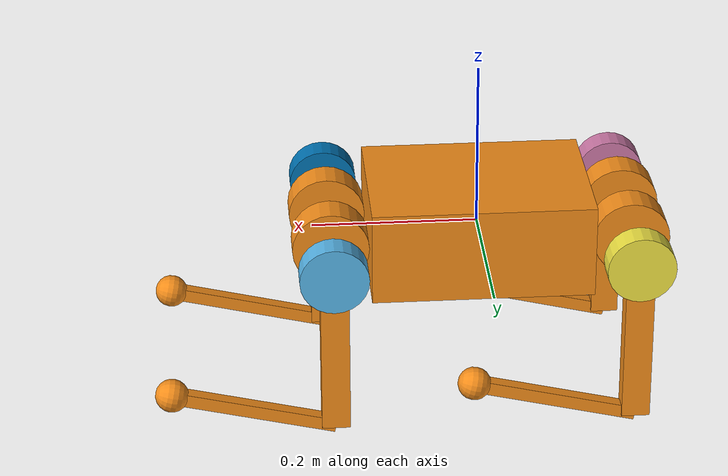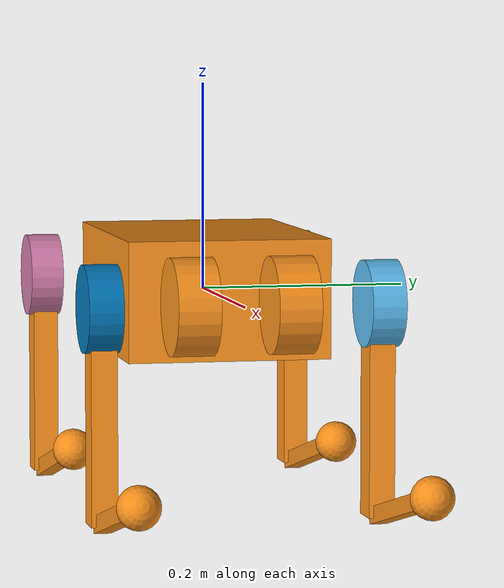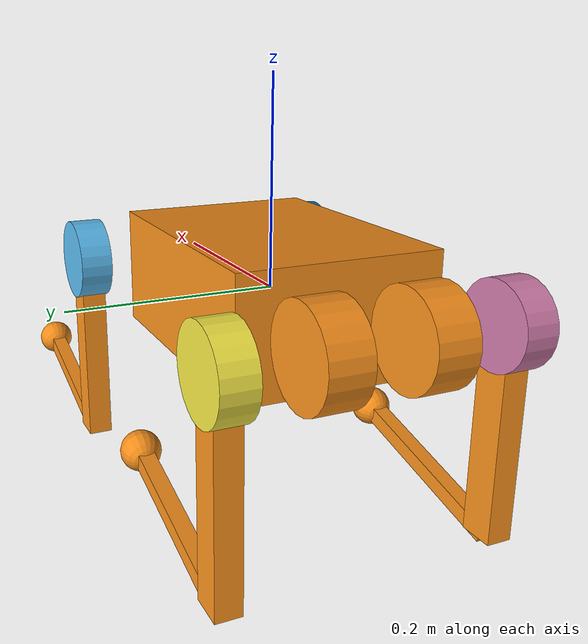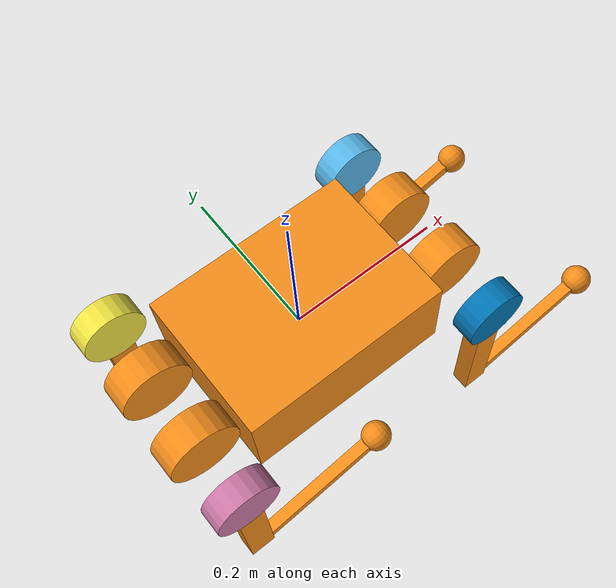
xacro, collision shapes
<?xml version="1.0"?>

<robot name="a1" xmlns:xacro="http://www.ros.org/wiki/xacro">

     <!-- This argument allows us to load joint sensors that measure the internal wrenches -->
    <xacro:arg name="load_force_sensors" default="false"/>
    <xacro:arg name="sensors" default="false"/>
    <xacro:arg name="task_period" default="0.004"/>
    <xacro:arg name="arm_enabled" default="false"/>
    <xacro:arg name="arm_name" default="kinova"/>
    <xacro:arg name="floating_base_link" default="true"/>
    <xacro:arg name="robot_name"  default="a1"/>
    <xacro:arg name="base_name"   default="trunk"/>

    <!-- load generic materials -->
    <xacro:include filename="$(find wolf_description_utils)/urdfs/materials.xacro"/>

    <!-- generic simulator_gazebo plugins for starting mechanism control, ros time -->
    <xacro:include filename="$(find wolf_description_utils)/urdfs/gazebo.urdf.xacro"/>

    <!-- legs transmission and gazebo plugins -->
    <xacro:include filename="$(find wolf_description_utils)/urdfs/leg.transmission.xacro"/>
    <xacro:include filename="$(find wolf_description_utils)/urdfs/leg.gazebo.xacro"/>

    <!-- sensors -->
    <xacro:if value="$(arg sensors)">
        <xacro:include filename="$(find sensors_description)/urdfs/sensors/imu.gazebo.xacro"/>
    </xacro:if>

    <xacro:include filename="$(find a1_description)/urdfs/const.xacro"/>
    <xacro:include filename="$(find a1_description)/urdfs/leg.xacro"/>

    <!-- Rollover Protection mode will add an additional stick on the top, use "true" or "false" to switch it. -->
    <xacro:property name="rolloverProtection" value="false"/>

    <!-- Floating-base Joint -->
    <xacro:if value="$(arg floating_base_link)">
            <link name="world"/>
            <joint name="floating_base_joint" type="floating">
              <origin rpy="0 0 0" xyz="0 0 0"/>
              <parent link="world"/>
              <child link="trunk"/>
            </joint>
    </xacro:if>

    <link name="trunk">
        <visual>
            <origin rpy="0 0 0" xyz="0 0 0"/>
            <geometry>
                <mesh filename="package://a1_description/meshes/trunk.dae" scale="1 1 1"/>
            </geometry>
            <material name="orange"/>
        </visual>
        <collision>
            <origin rpy="0 0 0" xyz="0 0 0"/>
            <geometry>
                <box size="${trunk_length} ${trunk_width} ${trunk_height}"/>
            </geometry>
        </collision>
        <inertial>
            <origin rpy="0 0 0" xyz="${trunk_com_x} ${trunk_com_y} ${trunk_com_z}"/>
            <mass value="${trunk_mass}"/>
            <inertia
                ixx="${trunk_ixx}" ixy="${trunk_ixy}" ixz="${trunk_ixz}"
                iyy="${trunk_iyy}" iyz="${trunk_iyz}"
                izz="${trunk_izz}"/>
        </inertial>
    </link>

    <xacro:if value="${(rolloverProtection == 'true')}">
        <joint name="stick_joint" type="fixed">
            <parent link="trunk"/>
            <child link="stick_link"/>
            <origin rpy="0 0 0" xyz="${0.18} 0 ${stick_length/2.0+0.08}"/>
        </joint>

        <link name="stick_link">
            <visual>
                <geometry>
                    <cylinder length="${stick_length}" radius="${stick_radius}"/>
                </geometry>
                <origin rpy="0 0 0" xyz="0 0 0"/>
                <material name="white"/>
            </visual>
            <collision>
                <geometry>
                    <cylinder length="${stick_length}" radius="${stick_radius}"/>
                </geometry>
                <origin rpy="0 0 0" xyz="0 0 0"/>
            </collision>
            <inertial>
                <mass value="${stick_mass}"/>
                <inertia
                    ixx="${stick_mass / 2.0 * (stick_radius*stick_radius)}" ixy="0.0" ixz="0.0"
                    iyy="${stick_mass / 12.0 * (3*stick_radius*stick_radius + stick_length*stick_length)}" iyz="0.0"
                    izz="${stick_mass / 12.0 * (3*stick_radius*stick_radius + stick_length*stick_length)}"/>
            </inertial>
        </link>
    </xacro:if>

    <joint name="imu_joint" type="fixed">
        <parent link="trunk"/>
        <child link="trunk_imu"/>
        <origin rpy="0 0 0" xyz="0 0 0"/>
    </joint>

    <link name="trunk_imu">
        <inertial>
            <mass value="0.001"/>
            <origin rpy="0 0 0" xyz="0 0 0"/>
            <inertia ixx="0.0001" ixy="0" ixz="0" iyy="0.000001" iyz="0" izz="0.0001"/>
        </inertial>
        <visual>
            <origin rpy="0 0 0" xyz="0 0 0"/>
            <geometry>
                <box size="0.001 0.001 0.001"/>
            </geometry>
            <material name="red"/>
        </visual>
        <collision>
            <origin rpy="0 0 0" xyz="0 0 0"/>
            <geometry>
                <box size=".001 .001 .001"/>
            </geometry>
        </collision>
    </link>

    <xacro:leg name="rf" mirror="-1" mirror_dae= "False" front_hind="1" front_hind_dae="True">
        <origin rpy="0 0 0" xyz="${leg_offset_x} ${-leg_offset_y} 0"/>
    </xacro:leg>

    <xacro:leg name="lf" mirror="1" mirror_dae="True" front_hind="1" front_hind_dae="True">
        <origin rpy="0 0 0" xyz="${leg_offset_x} ${leg_offset_y} 0"/>
    </xacro:leg>

    <xacro:leg name="rh" mirror="-1" mirror_dae="False" front_hind="-1" front_hind_dae="False">
        <origin rpy="0 0 0" xyz="${-leg_offset_x} ${-leg_offset_y} 0"/>
    </xacro:leg>

    <xacro:leg name="lh" mirror="1" mirror_dae="True" front_hind="-1" front_hind_dae="False">
        <origin rpy="0 0 0" xyz="${-leg_offset_x} ${leg_offset_y} 0"/>
    </xacro:leg>

    <!-- Extensions -->
    <xacro:leg_transmission prefix="rf"/>
    <xacro:leg_gazebo prefix="rf" robot_name="$(arg robot_name)" load_force_sensors="$(arg load_force_sensors)"/>
    <xacro:leg_transmission prefix="lf"/>
    <xacro:leg_gazebo prefix="lf" robot_name="$(arg robot_name)" load_force_sensors="$(arg load_force_sensors)"/>
    <xacro:leg_transmission prefix="rh"/>
    <xacro:leg_gazebo prefix="rh" robot_name="$(arg robot_name)" load_force_sensors="$(arg load_force_sensors)"/>
    <xacro:leg_transmission prefix="lh"/>
    <xacro:leg_gazebo prefix="lh" robot_name="$(arg robot_name)" load_force_sensors="$(arg load_force_sensors)"/>

</robot>

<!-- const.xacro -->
<robot name="a1_description" xmlns:xacro="http://www.ros.org/wiki/xacro">

    <!-- Constants for robot dimensions -->
    <xacro:property name="PI" value="3.1415926535897931"/>
    <xacro:property name="stick_mass" value="0.00001"/>

    <!-- simplified collision value -->
    <xacro:property name="trunk_width" value="0.194"/>
    <xacro:property name="trunk_length" value="0.267"/>
    <xacro:property name="trunk_height" value="0.114"/>
    <xacro:property name="hip_radius" value="0.046"/>
    <xacro:property name="hip_length" value="0.04"/>
    <xacro:property name="upperleg_shoulder_radius" value="0.041"/>
    <xacro:property name="upperleg_shoulder_length" value="0.032"/>
    <xacro:property name="upperleg_width" value="0.0245"/>
    <xacro:property name="upperleg_height" value="0.034"/>
    <xacro:property name="lowerleg_width" value="0.016"/>
    <xacro:property name="lowerleg_height" value="0.016"/>
    <xacro:property name="foot_radius" value="0.02"/>
    <xacro:property name="stick_radius" value="0.01"/>
    <xacro:property name="stick_length" value="0.2"/>

    <!-- kinematic value -->
    <xacro:property name="upperleg_offset" value="0.0838"/>
    <xacro:property name="upperleg_length" value="0.2"/>
    <xacro:property name="lowerleg_length" value="0.2"/>

    <!-- leg offset from trunk center value -->
    <xacro:property name="leg_offset_x" value="0.1805"/>
    <xacro:property name="leg_offset_y" value="0.047"/>
    <xacro:property name="trunk_offset_z" value="0.01675"/>
    <xacro:property name="hip_offset" value="0.065"/>

    <!-- joint limits -->
    <xacro:property name="damping" value="0"/>
    <xacro:property name="friction" value="0"/>
    <xacro:property name="hip_max" value="46"/>
    <xacro:property name="hip_min" value="-46"/>
    <xacro:property name="hip_velocity_max" value="21"/>
    <xacro:property name="hip_torque_max" value="33.5"/>
    <xacro:property name="upperleg_max" value="240"/>
    <xacro:property name="upperleg_min" value="-60"/>
    <xacro:property name="upperleg_velocity_max" value="21"/>
    <xacro:property name="upperleg_torque_max" value="33.5"/>
    <xacro:property name="lowerleg_max" value="-52.5"/>
    <xacro:property name="lowerleg_min" value="-154.5"/>
    <xacro:property name="lowerleg_velocity_max" value="21"/>
    <xacro:property name="lowerleg_torque_max" value="33.5"/>

    <!-- dynamics inertial value        total 13.9kg -->
    <!-- trunk -->
    <xacro:property name="trunk_mass" value="6.0"/>
    <xacro:property name="trunk_com_x" value="0.0000"/>
    <xacro:property name="trunk_com_y" value="0.0041"/>
    <xacro:property name="trunk_com_z" value="-0.0005"/>
    <xacro:property name="trunk_ixx" value="0.0158533"/>
    <xacro:property name="trunk_ixy" value="-0.0000366"/>
    <xacro:property name="trunk_ixz" value="-0.0000611"/>
    <xacro:property name="trunk_iyy" value="0.0377999"/>
    <xacro:property name="trunk_iyz" value="-0.0000275"/>
    <xacro:property name="trunk_izz" value="0.0456542"/>

    <!-- hip (left front) -->
    <xacro:property name="hip_mass" value="0.595"/>
    <xacro:property name="hip_com_x" value="-0.003875"/>
    <xacro:property name="hip_com_y" value="0.001622"/>
    <xacro:property name="hip_com_z" value="0.000042"/>
    <xacro:property name="hip_ixx" value="0.000402747"/>
    <xacro:property name="hip_ixy" value="-0.000008709"/>
    <xacro:property name="hip_ixz" value="-0.000000297"/>
    <xacro:property name="hip_iyy" value="0.000691123"/>
    <xacro:property name="hip_iyz" value="-0.000000545"/>
    <xacro:property name="hip_izz" value="0.000487919"/>

    <!-- upperleg -->
    <xacro:property name="upperleg_mass" value="0.888"/>
    <xacro:property name="upperleg_com_x" value="-0.003574"/>
    <xacro:property name="upperleg_com_y" value="-0.019529"/>
    <xacro:property name="upperleg_com_z" value="-0.030323"/>
    <xacro:property name="upperleg_ixx" value="0.005251806"/>
    <xacro:property name="upperleg_ixy" value="-0.000002168"/>
    <xacro:property name="upperleg_ixz" value="0.000346889"/>
    <xacro:property name="upperleg_iyy" value="0.005000475"/>
    <xacro:property name="upperleg_iyz" value="-0.000028174"/>
    <xacro:property name="upperleg_izz" value="0.001110200"/>

    <!-- lowerleg -->
    <xacro:property name="lowerleg_mass" value="0.151"/>
    <xacro:property name="lowerleg_com_x" value="0.007105"/>
    <xacro:property name="lowerleg_com_y" value="-0.000239"/>
    <xacro:property name="lowerleg_com_z" value="-0.096933"/>
    <xacro:property name="lowerleg_ixx" value="0.002344758"/>
    <xacro:property name="lowerleg_ixy" value="0.0"/>
    <xacro:property name="lowerleg_ixz" value="-0.000141275"/>
    <xacro:property name="lowerleg_iyy" value="0.002360755"/>
    <xacro:property name="lowerleg_iyz" value="0.0"/>
    <xacro:property name="lowerleg_izz" value="0.000031158"/>

    <!-- foot -->
    <xacro:property name="foot_mass" value="0.06"/>

</robot>

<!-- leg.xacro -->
<robot xmlns:xacro="http://www.ros.org/wiki/xacro">

    <xacro:macro name="leg" params="name mirror mirror_dae front_hind front_hind_dae *origin">

        <joint name="${name}_haa_joint" type="revolute">
            <xacro:insert_block name="origin"/>
            <parent link="trunk"/>
            <child link="${name}_hip"/>
            <axis xyz="1 0 0"/>
            <dynamics damping="${damping}" friction="${friction}"/>
            <xacro:if value="${(mirror_dae == True)}">
                <limit effort="${hip_torque_max}" velocity="${hip_velocity_max}" lower="${hip_min*PI/180.0}" upper="${hip_max*PI/180.0}"/>
            </xacro:if>
            <xacro:if value="${(mirror_dae == False)}">
                <limit effort="${hip_torque_max}" velocity="${hip_velocity_max}" lower="${-hip_max*PI/180.0}" upper="${-hip_min*PI/180.0}"/>
            </xacro:if>
        </joint>

        <link name="${name}_hip">
            <visual>
                <xacro:if value="${(mirror_dae == True) and (front_hind_dae == True)}">
                    <origin rpy="0 0 0" xyz="0 0 0"/>
                </xacro:if>
                <xacro:if value="${(mirror_dae == False) and (front_hind_dae == True)}">
                    <origin rpy="${PI} 0 0" xyz="0 0 0"/>
                </xacro:if>
                <xacro:if value="${(mirror_dae == True) and (front_hind_dae == False)}">
                    <origin rpy="0 ${PI} 0" xyz="0 0 0"/>
                </xacro:if>
                <xacro:if value="${(mirror_dae == False) and (front_hind_dae == False)}">
                    <origin rpy="${PI} ${PI} 0" xyz="0 0 0"/>
                </xacro:if>
                <geometry>
                    <mesh filename="$(find a1_description)/meshes/hip.dae" scale="1 1 1"/>
                </geometry>
                <material name="orange"/>
            </visual>
            <collision>
                <origin rpy="${PI/2.0} 0 0" xyz="0 0 0"/>
                <geometry>
                    <cylinder length="${hip_length}" radius="${hip_radius}"/>
                </geometry>
            </collision>
            <inertial>
                <origin rpy="0 0 0" xyz="${hip_com_x*front_hind} ${hip_com_y*mirror} ${hip_com_z}"/>
                <mass value="${hip_mass}"/>
                <inertia
                    ixx="${hip_ixx}" ixy="${hip_ixy*mirror*front_hind}" ixz="${hip_ixz*front_hind}"
                    iyy="${hip_iyy}" iyz="${hip_iyz*mirror}"
                    izz="${hip_izz}"/>
            </inertial>
        </link>

        <joint name="${name}_hip_fixed" type="fixed">
            <origin rpy="0 0 0" xyz="0 ${(hip_length/2.0+hip_offset)*mirror} 0"/>
            <parent link="${name}_hip"/>
            <child link="${name}_hip_shoulder"/>
        </joint>

        <!-- this link is only for collision -->
        <link name="${name}_hip_shoulder">
            <collision>
                <origin rpy="${PI/2.0} 0 0" xyz="0 0 0"/>
                <geometry>
                    <cylinder length="${upperleg_shoulder_length}" radius="${upperleg_shoulder_radius}"/>
                </geometry>
            </collision>
        </link>

        <joint name="${name}_hfe_joint" type="revolute">
            <origin rpy="0 0 0" xyz="0 ${upperleg_offset*mirror} 0"/>
            <parent link="${name}_hip"/>
            <child link="${name}_upperleg"/>
            <axis xyz="0 1 0"/>
            <dynamics damping="${damping}" friction="${friction}"/>
            <limit effort="${upperleg_torque_max}" velocity="${upperleg_velocity_max}" lower="${upperleg_min*PI/180.0}" upper="${upperleg_max*PI/180.0}"/>
        </joint>

        <link name="${name}_upperleg">
            <visual>
                <origin rpy="0 0 0" xyz="0 0 0"/>
                <geometry>
                    <xacro:if value="${mirror_dae == True}">
                        <mesh filename="$(find a1_description)/meshes/thigh.dae" scale="1 1 1"/>
                    </xacro:if>
                    <xacro:if value="${mirror_dae == False}">
                        <mesh filename="$(find a1_description)/meshes/thigh_mirror.dae" scale="1 1 1"/>
                    </xacro:if>
                </geometry>
                <material name="orange"/>
            </visual>
            <collision>
                <origin rpy="0 ${PI/2.0} 0" xyz="0 0 ${-upperleg_length/2.0}"/>
                <geometry>
                    <box size="${upperleg_length} ${upperleg_width} ${upperleg_height}"/>
                </geometry>
            </collision>
            <inertial>
                <origin rpy="0 0 0" xyz="${upperleg_com_x} ${upperleg_com_y*mirror} ${upperleg_com_z}"/>
                <mass value="${upperleg_mass}"/>
                <inertia
                    ixx="${upperleg_ixx}" ixy="${upperleg_ixy*mirror}" ixz="${upperleg_ixz}"
                    iyy="${upperleg_iyy}" iyz="${upperleg_iyz*mirror}"
                    izz="${upperleg_izz}"/>
            </inertial>
        </link>

        <joint name="${name}_kfe_joint" type="revolute">
            <origin rpy="0 0 0" xyz="0 0 ${-upperleg_length}"/>
            <parent link="${name}_upperleg"/>
            <child link="${name}_lowerleg"/>
            <axis xyz="0 1 0"/>
            <dynamics damping="${damping}" friction="${friction}"/>
            <limit effort="${lowerleg_torque_max}" velocity="${lowerleg_velocity_max}" lower="${lowerleg_min*PI/180.0}" upper="${lowerleg_max*PI/180.0}"/>
        </joint>

        <link name="${name}_lowerleg">
            <visual>
                <origin rpy="0 0 0" xyz="0 0 0"/>
                <geometry>
                    <mesh filename="$(find a1_description)/meshes/calf.dae" scale="1 1 1"/>
                </geometry>
                <material name="orange"/>
            </visual>
            <collision>
                <origin rpy="0 ${PI/2.0} 0" xyz="0 0 ${-lowerleg_length/2.0}"/>
                <geometry>
                    <box size="${lowerleg_length} ${lowerleg_width} ${lowerleg_height}"/>
                </geometry>
            </collision>
            <inertial>
                <origin rpy="0 0 0" xyz="${lowerleg_com_x} ${lowerleg_com_y} ${lowerleg_com_z}"/>
                <mass value="${lowerleg_mass}"/>
                <inertia
                    ixx="${lowerleg_ixx}" ixy="${lowerleg_ixy}" ixz="${lowerleg_ixz}"
                    iyy="${lowerleg_iyy}" iyz="${lowerleg_iyz}"
                    izz="${lowerleg_izz}"/>
            </inertial>
        </link>

        <joint name="${name}_foot_fixed" type="fixed">
            <origin rpy="0 0 0" xyz="0 0 ${-(lowerleg_length)}"/>
            <parent link="${name}_lowerleg"/>
            <child link="${name}_foot"/>
        </joint>

        <link name="${name}_foot">
            <visual>
                <origin rpy="0 0 0" xyz="0 0 0"/>
                <geometry>
                    <sphere radius="${foot_radius-0.01}"/>
                </geometry>
                <material name="orange"/>
            </visual>
            <collision>
                <origin rpy="0 0 0" xyz="0 0 0"/>
                <geometry>
                    <sphere radius="${foot_radius}"/>
                </geometry>
            </collision>
            <inertial>
                <mass value="${foot_mass}"/>
                <inertia
                    ixx="${(2*foot_mass)/5.0*(foot_radius*foot_radius)}" ixy="0.0" ixz="0.0"
                    iyy="${(2*foot_mass)/5.0*(foot_radius*foot_radius)}" iyz="0.0"
                    izz="${(2*foot_mass)/5.0*(foot_radius*foot_radius)}"/>
            </inertial>
        </link>

    </xacro:macro>
</robot>
